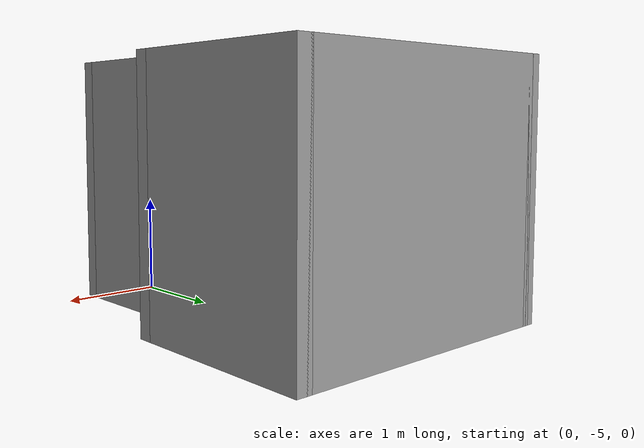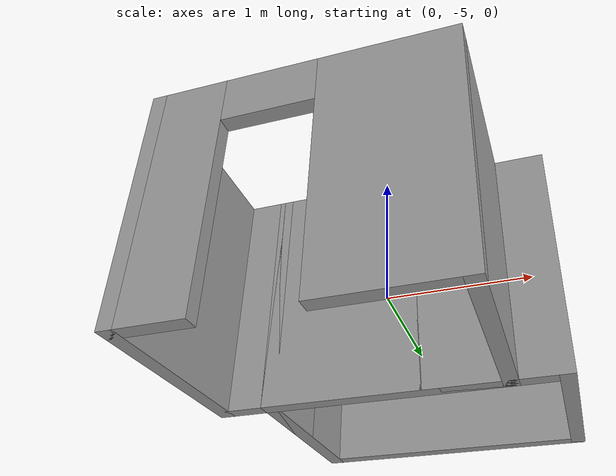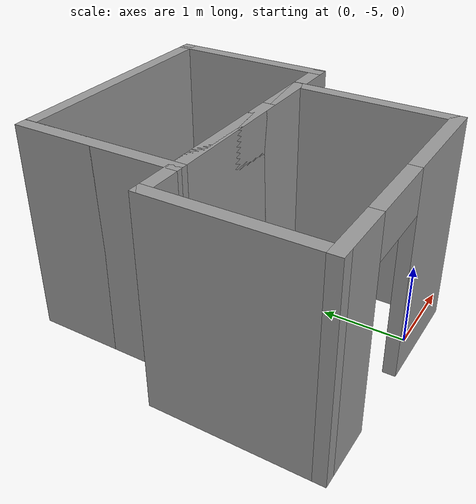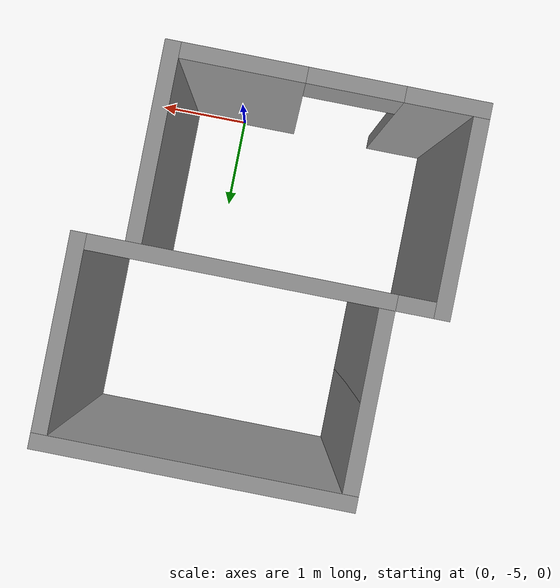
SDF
<?xml version='1.0'?>
<sdf version='1.6'>
  <model name='Map5'>
    <pose frame=''>-0.545 -3.21 0 0 -0 0</pose>
    <link name='Wall_0'>
      <collision name='Wall_0_Collision'>
        <geometry>
          <box>
            <size>3 0.15 2.5</size>
          </box>
        </geometry>
        <pose frame=''>0 0 1.25 0 -0 0</pose>
      </collision>
      <visual name='Wall_0_Visual'>
        <pose frame=''>0 0 1.25 0 -0 0</pose>
        <geometry>
          <box>
            <size>3 0.15 2.5</size>
          </box>
        </geometry>
        <material>
          <script>
            <uri>file://media/materials/scripts/gazebo.material</uri>
            <name>Gazebo/Grey</name>
          </script>
          <ambient>1 1 1 1</ambient>
        </material>
      </visual>
      <pose frame=''>0.25 1.85 0 0 -0 0</pose>
    </link>
    <link name='Wall_1'>
      <collision name='Wall_1_Collision'>
        <geometry>
          <box>
            <size>2 0.15 2.5</size>
          </box>
        </geometry>
        <pose frame=''>0 0 1.25 0 -0 0</pose>
      </collision>
      <visual name='Wall_1_Visual'>
        <pose frame=''>0 0 1.25 0 -0 0</pose>
        <geometry>
          <box>
            <size>2 0.15 2.5</size>
          </box>
        </geometry>
        <material>
          <script>
            <uri>file://media/materials/scripts/gazebo.material</uri>
            <name>Gazebo/Grey</name>
          </script>
          <ambient>1 1 1 1</ambient>
        </material>
      </visual>
      <pose frame=''>1.675 0.925 0 0 0 -1.5708</pose>
    </link>
    <link name='Wall_2'>
      <collision name='Wall_2_Collision'>
        <geometry>
          <box>
            <size>3 0.15 2.5</size>
          </box>
        </geometry>
        <pose frame=''>0 0 1.25 0 -0 0</pose>
      </collision>
      <visual name='Wall_2_Visual'>
        <pose frame=''>0 0 1.25 0 -0 0</pose>
        <geometry>
          <box>
            <size>3 0.15 2.5</size>
          </box>
        </geometry>
        <material>
          <script>
            <uri>file://media/materials/scripts/gazebo.material</uri>
            <name>Gazebo/Grey</name>
          </script>
          <ambient>1 1 1 1</ambient>
        </material>
      </visual>
      <pose frame=''>0.25 0 0 0 -0 3.14159</pose>
    </link>
    <link name='Wall_3'>
      <collision name='Wall_3_Collision'>
        <geometry>
          <box>
            <size>2 0.15 2.5</size>
          </box>
        </geometry>
        <pose frame=''>0 0 1.25 0 -0 0</pose>
      </collision>
      <visual name='Wall_3_Visual'>
        <pose frame=''>0 0 1.25 0 -0 0</pose>
        <geometry>
          <box>
            <size>2 0.15 2.5</size>
          </box>
        </geometry>
        <material>
          <script>
            <uri>file://media/materials/scripts/gazebo.material</uri>
            <name>Gazebo/Grey</name>
          </script>
          <ambient>1 1 1 1</ambient>
        </material>
      </visual>
      <pose frame=''>-1.175 0.925 0 0 -0 1.5708</pose>
    </link>
    <link name='Wall_4'>
      <collision name='Wall_4_Collision'>
        <geometry>
          <box>
            <size>2 0.15 2.5</size>
          </box>
        </geometry>
        <pose frame=''>0 0 1.25 0 -0 0</pose>
      </collision>
      <visual name='Wall_4_Visual'>
        <pose frame=''>0 0 1.25 0 -0 0</pose>
        <geometry>
          <box>
            <size>2 0.15 2.5</size>
          </box>
        </geometry>
        <material>
          <script>
            <uri>file://media/materials/scripts/gazebo.material</uri>
            <name>Gazebo/Grey</name>
          </script>
          <ambient>1 1 1 1</ambient>
        </material>
      </visual>
      <pose frame=''>-1.175 0.925 0 0 0 -1.5708</pose>
    </link>
    <link name='Wall_5'>
      <collision name='Wall_5_Collision'>
        <geometry>
          <box>
            <size>2.5 0.15 2.5</size>
          </box>
        </geometry>
        <pose frame=''>0 0 1.25 0 -0 0</pose>
      </collision>
      <visual name='Wall_5_Visual'>
        <pose frame=''>0 0 1.25 0 -0 0</pose>
        <geometry>
          <box>
            <size>2.5 0.15 2.5</size>
          </box>
        </geometry>
        <material>
          <script>
            <uri>file://media/materials/scripts/gazebo.material</uri>
            <name>Gazebo/Grey</name>
          </script>
          <ambient>1 1 1 1</ambient>
        </material>
      </visual>
      <pose frame=''>0 0 0 0 -0 0</pose>
    </link>
    <link name='Wall_6'>
      <collision name='Wall_6_Collision'>
        <geometry>
          <box>
            <size>2 0.15 2.5</size>
          </box>
        </geometry>
        <pose frame=''>0 0 1.25 0 -0 0</pose>
      </collision>
      <visual name='Wall_6_Visual'>
        <pose frame=''>0 0 1.25 0 -0 0</pose>
        <geometry>
          <box>
            <size>2 0.15 2.5</size>
          </box>
        </geometry>
        <material>
          <script>
            <uri>file://media/materials/scripts/gazebo.material</uri>
            <name>Gazebo/Grey</name>
          </script>
          <ambient>1 1 1 1</ambient>
        </material>
      </visual>
      <pose frame=''>1.175 -0.925 0 0 0 -1.5708</pose>
    </link>
    <link name='Wall_7'>
      <pose frame=''>-0.25 -1.85 0 0 -0 3.14159</pose>
      <visual name='Wall_7_Visual_0'>
        <pose frame=''>-0.842588 0 1.25 0 -0 0</pose>
        <geometry>
          <box>
            <size>1.31482 0.15 2.5</size>
          </box>
        </geometry>
        <material>
          <script>
            <uri>file://media/materials/scripts/gazebo.material</uri>
            <name>Gazebo/Grey</name>
          </script>
          <ambient>1 1 1 1</ambient>
        </material>
      </visual>
      <collision name='Wall_7_Collision_0'>
        <geometry>
          <box>
            <size>1.31482 0.15 2.5</size>
          </box>
        </geometry>
        <pose frame=''>-0.842588 0 1.25 0 -0 0</pose>
      </collision>
      <visual name='Wall_7_Visual_1'>
        <pose frame=''>1.10741 0 1.25 0 -0 0</pose>
        <geometry>
          <box>
            <size>0.785175 0.15 2.5</size>
          </box>
        </geometry>
        <material>
          <script>
            <uri>file://media/materials/scripts/gazebo.material</uri>
            <name>Gazebo/Grey</name>
          </script>
          <ambient>1 1 1 1</ambient>
        </material>
      </visual>
      <collision name='Wall_7_Collision_1'>
        <geometry>
          <box>
            <size>0.785175 0.15 2.5</size>
          </box>
        </geometry>
        <pose frame=''>1.10741 0 1.25 0 -0 0</pose>
      </collision>
      <visual name='Wall_7_Visual_2'>
        <pose frame=''>0.264825 0 2.25 0 -0 0</pose>
        <geometry>
          <box>
            <size>0.9 0.15 0.5</size>
          </box>
        </geometry>
        <material>
          <script>
            <uri>file://media/materials/scripts/gazebo.material</uri>
            <name>Gazebo/Grey</name>
          </script>
          <ambient>1 1 1 1</ambient>
        </material>
      </visual>
      <collision name='Wall_7_Collision_2'>
        <geometry>
          <box>
            <size>0.9 0.15 0.5</size>
          </box>
        </geometry>
        <pose frame=''>0.264825 0 2.25 0 -0 0</pose>
      </collision>
    </link>
    <link name='Wall_8'>
      <collision name='Wall_8_Collision'>
        <geometry>
          <box>
            <size>2 0.15 2.5</size>
          </box>
        </geometry>
        <pose frame=''>0 0 1.25 0 -0 0</pose>
      </collision>
      <visual name='Wall_8_Visual'>
        <pose frame=''>0 0 1.25 0 -0 0</pose>
        <geometry>
          <box>
            <size>2 0.15 2.5</size>
          </box>
        </geometry>
        <material>
          <script>
            <uri>file://media/materials/scripts/gazebo.material</uri>
            <name>Gazebo/Grey</name>
          </script>
          <ambient>1 1 1 1</ambient>
        </material>
      </visual>
      <pose frame=''>-1.675 -0.925 0 0 -0 1.5708</pose>
    </link>
    <link name='Wall_9'>
      <pose frame=''>-0.25 0 0 0 -0 0</pose>
      <visual name='Wall_9_Visual_0'>
        <pose frame=''>-0.80985 0 1.25 0 -0 0</pose>
        <geometry>
          <box>
            <size>1.3803 0.15 2.5</size>
          </box>
        </geometry>
        <material>
          <script>
            <uri>file://media/materials/scripts/gazebo.material</uri>
            <name>Gazebo/Grey</name>
          </script>
          <ambient>1 1 1 1</ambient>
        </material>
      </visual>
      <collision name='Wall_9_Collision_0'>
        <geometry>
          <box>
            <size>1.3803 0.15 2.5</size>
          </box>
        </geometry>
        <pose frame=''>-0.80985 0 1.25 0 -0 0</pose>
      </collision>
      <visual name='Wall_9_Visual_1'>
        <pose frame=''>1.14015 0 1.25 0 -0 0</pose>
        <geometry>
          <box>
            <size>0.7197 0.15 2.5</size>
          </box>
        </geometry>
        <material>
          <script>
            <uri>file://media/materials/scripts/gazebo.material</uri>
            <name>Gazebo/Grey</name>
          </script>
          <ambient>1 1 1 1</ambient>
        </material>
      </visual>
      <collision name='Wall_9_Collision_1'>
        <geometry>
          <box>
            <size>0.7197 0.15 2.5</size>
          </box>
        </geometry>
        <pose frame=''>1.14015 0 1.25 0 -0 0</pose>
      </collision>
      <visual name='Wall_9_Visual_2'>
        <pose frame=''>0.3303 0 2.25 0 -0 0</pose>
        <geometry>
          <box>
            <size>0.9 0.15 0.5</size>
          </box>
        </geometry>
        <material>
          <script>
            <uri>file://media/materials/scripts/gazebo.material</uri>
            <name>Gazebo/Grey</name>
          </script>
          <ambient>1 1 1 1</ambient>
        </material>
      </visual>
      <collision name='Wall_9_Collision_2'>
        <geometry>
          <box>
            <size>0.9 0.15 0.5</size>
          </box>
        </geometry>
        <pose frame=''>0.3303 0 2.25 0 -0 0</pose>
      </collision>
    </link>
    <static>1</static>
  </model>
</sdf>
